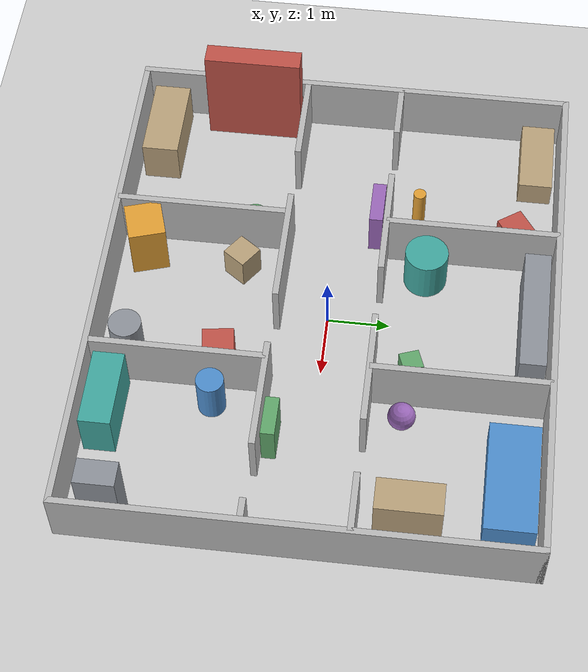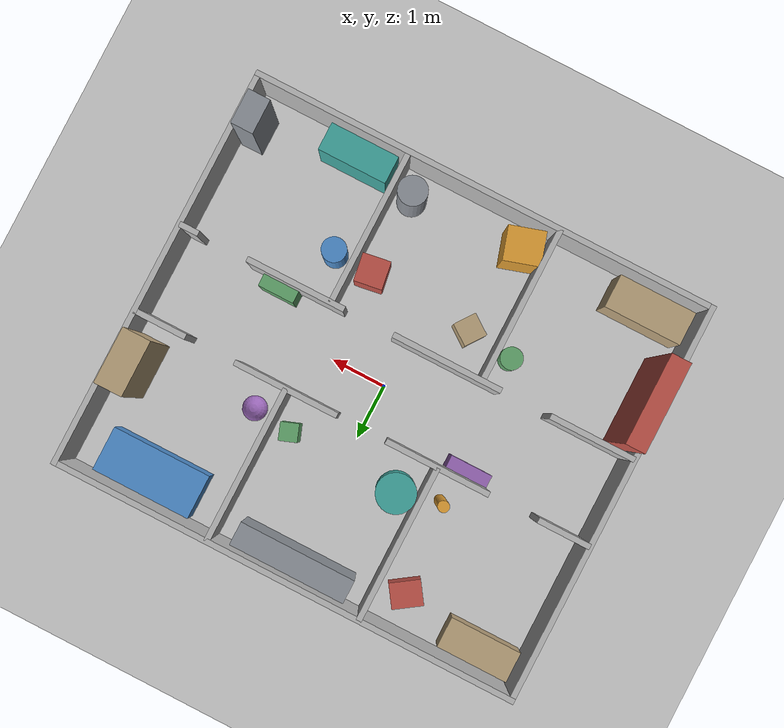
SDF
<?xml version="1.0"?>
<sdf version="1.6">
    <world name="default">

        <!-- 基础物理和场景插件 -->
        <plugin filename="gz-sim-physics-system"
            name="gz::sim::systems::Physics" />
        <plugin filename="gz-sim-user-commands-system"
            name="gz::sim::systems::UserCommands" />
        <plugin filename="gz-sim-scene-broadcaster-system"
            name="gz::sim::systems::SceneBroadcaster" />

        <!-- 传感器插件（激光雷达、摄像头等需要这个）-->
        <plugin filename="gz-sim-sensors-system"
            name="gz::sim::systems::Sensors">
            <render_engine>ogre2</render_engine>
        </plugin>

        <!-- IMU插件 -->
        <plugin filename="gz-sim-imu-system" name="gz::sim::systems::Imu" />

        <!-- 光源 -->
        <light type="directional" name="sun">
            <cast_shadows>true</cast_shadows>
            <pose>0 0 10 0 0 0</pose>
            <diffuse>0.8 0.8 0.8 1</diffuse>
            <specular>0.2 0.2 0.2 1</specular>
            <attenuation>
                <range>1000</range>
                <constant>0.9</constant>
                <linear>0.01</linear>
                <quadratic>0.001</quadratic>
            </attenuation>
            <direction>-0.5 0.1 -0.9</direction>
        </light>

        <!-- 地面 -->
        <model name="ground_plane">
            <static>true</static>
            <link name="link">
                <collision name="collision">
                    <geometry>
                        <plane>
                            <normal>0 0 1</normal>
                        </plane>
                    </geometry>
                </collision>
                <visual name="visual">
                    <geometry>
                        <plane>
                            <normal>0 0 1</normal>
                            <size>100 100</size>
                        </plane>
                    </geometry>
                    <material>
                        <ambient>0.8 0.8 0.8 1</ambient>
                        <diffuse>0.8 0.8 0.8 1</diffuse>
                    </material>
                </visual>
            </link>
        </model>

        <!-- ==================== 外墙（8.4 × 7.2 m 外框） ==================== -->

        <model name="wall_north">
            <static>true</static>
            <pose>0 3.6 0.5 0 0 0</pose>
            <link name="link">
                <collision name="collision">
                    <geometry><box><size>8.5 0.1 1</size></box></geometry>
                </collision>
                <visual name="visual">
                    <geometry><box><size>8.5 0.1 1</size></box></geometry>
                </visual>
            </link>
        </model>

        <model name="wall_south">
            <static>true</static>
            <pose>0 -3.6 0.5 0 0 0</pose>
            <link name="link">
                <collision name="collision">
                    <geometry><box><size>8.5 0.1 1</size></box></geometry>
                </collision>
                <visual name="visual">
                    <geometry><box><size>8.5 0.1 1</size></box></geometry>
                </visual>
            </link>
        </model>

        <model name="wall_west">
            <static>true</static>
            <pose>-4.2 0 0.5 0 0 0</pose>
            <link name="link">
                <collision name="collision">
                    <geometry><box><size>0.1 7.3 1</size></box></geometry>
                </collision>
                <visual name="visual">
                    <geometry><box><size>0.1 7.3 1</size></box></geometry>
                </visual>
            </link>
        </model>

        <model name="wall_east">
            <static>true</static>
            <pose>4.2 0 0.5 0 0 0</pose>
            <link name="link">
                <collision name="collision">
                    <geometry><box><size>0.1 7.3 1</size></box></geometry>
                </collision>
                <visual name="visual">
                    <geometry><box><size>0.1 7.3 1</size></box></geometry>
                </visual>
            </link>
        </model>

        <!-- ============ 走廊北墙 y=0.8，门洞在 x = -2.8 / 0.0 / 2.8 ============ -->
        <!-- 墙段: [-4.2,-3.25] [-2.35,-0.45] [0.45,2.35] [3.25,4.2] -->

        <model name="corridor_n_seg1">
            <static>true</static>
            <pose>-3.725 0.8 0.5 0 0 0</pose>
            <link name="link">
                <collision name="collision">
                    <geometry><box><size>0.95 0.1 1</size></box></geometry>
                </collision>
                <visual name="visual">
                    <geometry><box><size>0.95 0.1 1</size></box></geometry>
                </visual>
            </link>
        </model>

        <model name="corridor_n_seg2">
            <static>true</static>
            <pose>-1.4 0.8 0.5 0 0 0</pose>
            <link name="link">
                <collision name="collision">
                    <geometry><box><size>1.9 0.1 1</size></box></geometry>
                </collision>
                <visual name="visual">
                    <geometry><box><size>1.9 0.1 1</size></box></geometry>
                </visual>
            </link>
        </model>

        <model name="corridor_n_seg3">
            <static>true</static>
            <pose>1.4 0.8 0.5 0 0 0</pose>
            <link name="link">
                <collision name="collision">
                    <geometry><box><size>1.9 0.1 1</size></box></geometry>
                </collision>
                <visual name="visual">
                    <geometry><box><size>1.9 0.1 1</size></box></geometry>
                </visual>
            </link>
        </model>

        <model name="corridor_n_seg4">
            <static>true</static>
            <pose>3.725 0.8 0.5 0 0 0</pose>
            <link name="link">
                <collision name="collision">
                    <geometry><box><size>0.95 0.1 1</size></box></geometry>
                </collision>
                <visual name="visual">
                    <geometry><box><size>0.95 0.1 1</size></box></geometry>
                </visual>
            </link>
        </model>

        <!-- ===== 走廊南墙 y=-0.8，门洞在 x = -2.2 / 0.7 / 3.4（刻意与北侧错开）===== -->
        <!-- 墙段: [-4.2,-2.65] [-1.75,0.25] [1.15,2.95] [3.85,4.2] -->

        <model name="corridor_s_seg1">
            <static>true</static>
            <pose>-3.425 -0.8 0.5 0 0 0</pose>
            <link name="link">
                <collision name="collision">
                    <geometry><box><size>1.55 0.1 1</size></box></geometry>
                </collision>
                <visual name="visual">
                    <geometry><box><size>1.55 0.1 1</size></box></geometry>
                </visual>
            </link>
        </model>

        <model name="corridor_s_seg2">
            <static>true</static>
            <pose>-0.75 -0.8 0.5 0 0 0</pose>
            <link name="link">
                <collision name="collision">
                    <geometry><box><size>2.0 0.1 1</size></box></geometry>
                </collision>
                <visual name="visual">
                    <geometry><box><size>2.0 0.1 1</size></box></geometry>
                </visual>
            </link>
        </model>

        <model name="corridor_s_seg3">
            <static>true</static>
            <pose>2.05 -0.8 0.5 0 0 0</pose>
            <link name="link">
                <collision name="collision">
                    <geometry><box><size>1.8 0.1 1</size></box></geometry>
                </collision>
                <visual name="visual">
                    <geometry><box><size>1.8 0.1 1</size></box></geometry>
                </visual>
            </link>
        </model>

        <model name="corridor_s_seg4">
            <static>true</static>
            <pose>4.025 -0.8 0.5 0 0 0</pose>
            <link name="link">
                <collision name="collision">
                    <geometry><box><size>0.35 0.1 1</size></box></geometry>
                </collision>
                <visual name="visual">
                    <geometry><box><size>0.35 0.1 1</size></box></geometry>
                </visual>
            </link>
        </model>

        <!-- ==================== 房间隔墙 ==================== -->

        <model name="divider_n_west">
            <static>true</static>
            <pose>-1.4 2.2 0.5 0 0 0</pose>
            <link name="link">
                <collision name="collision">
                    <geometry><box><size>0.1 2.8 1</size></box></geometry>
                </collision>
                <visual name="visual">
                    <geometry><box><size>0.1 2.8 1</size></box></geometry>
                </visual>
            </link>
        </model>

        <model name="divider_n_east">
            <static>true</static>
            <pose>1.4 2.2 0.5 0 0 0</pose>
            <link name="link">
                <collision name="collision">
                    <geometry><box><size>0.1 2.8 1</size></box></geometry>
                </collision>
                <visual name="visual">
                    <geometry><box><size>0.1 2.8 1</size></box></geometry>
                </visual>
            </link>
        </model>

        <model name="divider_s_west">
            <static>true</static>
            <pose>-1.4 -2.2 0.5 0 0 0</pose>
            <link name="link">
                <collision name="collision">
                    <geometry><box><size>0.1 2.8 1</size></box></geometry>
                </collision>
                <visual name="visual">
                    <geometry><box><size>0.1 2.8 1</size></box></geometry>
                </visual>
            </link>
        </model>

        <model name="divider_s_east">
            <static>true</static>
            <pose>1.4 -2.2 0.5 0 0 0</pose>
            <link name="link">
                <collision name="collision">
                    <geometry><box><size>0.1 2.8 1</size></box></geometry>
                </collision>
                <visual name="visual">
                    <geometry><box><size>0.1 2.8 1</size></box></geometry>
                </visual>
            </link>
        </model>

        <!-- 客厅·长沙发（贴北墙，矮而长） -->
        <model name="n1_sofa">
            <static>true</static>
            <pose>-3.45 3.2 0.225 0 0 0.0</pose>
            <link name="link">
                <collision name="collision">
                    <geometry><box><size>1.3 0.55 0.45</size></box></geometry>
                </collision>
                <visual name="visual">
                    <geometry><box><size>1.3 0.55 0.45</size></box></geometry>
                    <material>
                        <ambient>0.72 0.63 0.48 1</ambient>
                        <diffuse>0.72 0.63 0.48 1</diffuse>
                    </material>
                </visual>
            </link>
        </model>

        <!-- 客厅·茶几（斜放，矮） -->
        <model name="n1_table">
            <static>true</static>
            <pose>-1.95 2.95 0.19 0 0 0.6</pose>
            <link name="link">
                <collision name="collision">
                    <geometry><box><size>0.55 0.45 0.38</size></box></geometry>
                </collision>
                <visual name="visual">
                    <geometry><box><size>0.55 0.45 0.38</size></box></geometry>
                    <material>
                        <ambient>0.75 0.32 0.28 1</ambient>
                        <diffuse>0.75 0.32 0.28 1</diffuse>
                    </material>
                </visual>
            </link>
        </model>

        <!-- 客厅·落地灯（细高） -->
        <model name="n1_lamp">
            <static>true</static>
            <pose>-1.75 1.3 0.65 0 0 0</pose>
            <link name="link">
                <collision name="collision">
                    <geometry><cylinder><radius>0.1</radius><length>1.3</length></cylinder></geometry>
                </collision>
                <visual name="visual">
                    <geometry><cylinder><radius>0.1</radius><length>1.3</length></cylinder></geometry>
                    <material>
                        <ambient>0.88 0.62 0.20 1</ambient>
                        <diffuse>0.88 0.62 0.20 1</diffuse>
                    </material>
                </visual>
            </link>
        </model>

        <!-- 厨房·整排橱柜（贴北墙，长直边） -->
        <model name="n2_counter">
            <static>true</static>
            <pose>0.0 3.28 0.45 0 0 0.0</pose>
            <link name="link">
                <collision name="collision">
                    <geometry><box><size>2.1 0.42 0.9</size></box></geometry>
                </collision>
                <visual name="visual">
                    <geometry><box><size>2.1 0.42 0.9</size></box></geometry>
                    <material>
                        <ambient>0.55 0.57 0.60 1</ambient>
                        <diffuse>0.55 0.57 0.60 1</diffuse>
                    </material>
                </visual>
            </link>
        </model>

        <!-- 厨房·圆餐桌 -->
        <model name="n2_table">
            <static>true</static>
            <pose>-1.0 1.5 0.37 0 0 0</pose>
            <link name="link">
                <collision name="collision">
                    <geometry><cylinder><radius>0.35</radius><length>0.74</length></cylinder></geometry>
                </collision>
                <visual name="visual">
                    <geometry><cylinder><radius>0.35</radius><length>0.74</length></cylinder></geometry>
                    <material>
                        <ambient>0.25 0.65 0.62 1</ambient>
                        <diffuse>0.25 0.65 0.62 1</diffuse>
                    </material>
                </visual>
            </link>
        </model>

        <!-- 厨房·立式垃圾桶（小方） -->
        <model name="n2_bin">
            <static>true</static>
            <pose>1.05 1.42 0.35 0 0 0.35</pose>
            <link name="link">
                <collision name="collision">
                    <geometry><box><size>0.32 0.32 0.7</size></box></geometry>
                </collision>
                <visual name="visual">
                    <geometry><box><size>0.32 0.32 0.7</size></box></geometry>
                    <material>
                        <ambient>0.38 0.65 0.42 1</ambient>
                        <diffuse>0.38 0.65 0.42 1</diffuse>
                    </material>
                </visual>
            </link>
        </model>

        <!-- 卧室·床（贴北墙，占半间） -->
        <model name="n3_bed">
            <static>true</static>
            <pose>2.8 3.1 0.25 0 0 0.0</pose>
            <link name="link">
                <collision name="collision">
                    <geometry><box><size>1.8 0.8 0.5</size></box></geometry>
                </collision>
                <visual name="visual">
                    <geometry><box><size>1.8 0.8 0.5</size></box></geometry>
                    <material>
                        <ambient>0.30 0.55 0.80 1</ambient>
                        <diffuse>0.30 0.55 0.80 1</diffuse>
                    </material>
                </visual>
            </link>
        </model>

        <!-- 卧室·衣柜（贴东墙，高） -->
        <model name="n3_wardrobe">
            <static>true</static>
            <pose>3.85 1.6 0.775 0 0 0.0</pose>
            <link name="link">
                <collision name="collision">
                    <geometry><box><size>0.5 1.0 1.55</size></box></geometry>
                </collision>
                <visual name="visual">
                    <geometry><box><size>0.5 1.0 1.55</size></box></geometry>
                    <material>
                        <ambient>0.72 0.63 0.48 1</ambient>
                        <diffuse>0.72 0.63 0.48 1</diffuse>
                    </material>
                </visual>
            </link>
        </model>

        <!-- 卧室·脏衣篓（球） -->
        <model name="n3_basket">
            <static>true</static>
            <pose>1.78 1.35 0.22 0 0 0</pose>
            <link name="link">
                <collision name="collision">
                    <geometry><sphere><radius>0.22</radius></sphere></geometry>
                </collision>
                <visual name="visual">
                    <geometry><sphere><radius>0.22</radius></sphere></geometry>
                    <material>
                        <ambient>0.60 0.40 0.72 1</ambient>
                        <diffuse>0.60 0.40 0.72 1</diffuse>
                    </material>
                </visual>
            </link>
        </model>

        <!-- 书房·书桌（贴南墙） -->
        <model name="s1_desk">
            <static>true</static>
            <pose>-3.35 -3.15 0.375 0 0 0.0</pose>
            <link name="link">
                <collision name="collision">
                    <geometry><box><size>1.4 0.6 0.75</size></box></geometry>
                </collision>
                <visual name="visual">
                    <geometry><box><size>1.4 0.6 0.75</size></box></geometry>
                    <material>
                        <ambient>0.72 0.63 0.48 1</ambient>
                        <diffuse>0.72 0.63 0.48 1</diffuse>
                    </material>
                </visual>
            </link>
        </model>

        <!-- 书房·书架（贴西墙，顶天） -->
        <model name="s1_shelf">
            <static>true</static>
            <pose>-3.95 -1.7 0.9 0 0 0.0</pose>
            <link name="link">
                <collision name="collision">
                    <geometry><box><size>0.35 1.6 1.8</size></box></geometry>
                </collision>
                <visual name="visual">
                    <geometry><box><size>0.35 1.6 1.8</size></box></geometry>
                    <material>
                        <ambient>0.75 0.32 0.28 1</ambient>
                        <diffuse>0.75 0.32 0.28 1</diffuse>
                    </material>
                </visual>
            </link>
        </model>

        <!-- 书房·圆凳（矮胖） -->
        <model name="s1_stool">
            <static>true</static>
            <pose>-1.7 -1.4 0.225 0 0 0</pose>
            <link name="link">
                <collision name="collision">
                    <geometry><cylinder><radius>0.2</radius><length>0.45</length></cylinder></geometry>
                </collision>
                <visual name="visual">
                    <geometry><cylinder><radius>0.2</radius><length>0.45</length></cylinder></geometry>
                    <material>
                        <ambient>0.38 0.65 0.42 1</ambient>
                        <diffuse>0.38 0.65 0.42 1</diffuse>
                    </material>
                </visual>
            </link>
        </model>

        <!-- 储物·大纸箱（乱堆，斜） -->
        <model name="s2_crate_a">
            <static>true</static>
            <pose>-1.0 -3.1 0.475 0 0 0.3</pose>
            <link name="link">
                <collision name="collision">
                    <geometry><box><size>0.65 0.6 0.95</size></box></geometry>
                </collision>
                <visual name="visual">
                    <geometry><box><size>0.65 0.6 0.95</size></box></geometry>
                    <material>
                        <ambient>0.88 0.62 0.20 1</ambient>
                        <diffuse>0.88 0.62 0.20 1</diffuse>
                    </material>
                </visual>
            </link>
        </model>

        <!-- 储物·小纸箱（斜） -->
        <model name="s2_crate_b">
            <static>true</static>
            <pose>-0.85 -1.5 0.275 0 0 0.95</pose>
            <link name="link">
                <collision name="collision">
                    <geometry><box><size>0.42 0.42 0.55</size></box></geometry>
                </collision>
                <visual name="visual">
                    <geometry><box><size>0.42 0.42 0.55</size></box></geometry>
                    <material>
                        <ambient>0.72 0.63 0.48 1</ambient>
                        <diffuse>0.72 0.63 0.48 1</diffuse>
                    </material>
                </visual>
            </link>
        </model>

        <!-- 储物·铁桶 -->
        <model name="s2_drum">
            <static>true</static>
            <pose>1.05 -3.05 0.5 0 0 0</pose>
            <link name="link">
                <collision name="collision">
                    <geometry><cylinder><radius>0.26</radius><length>1.0</length></cylinder></geometry>
                </collision>
                <visual name="visual">
                    <geometry><cylinder><radius>0.26</radius><length>1.0</length></cylinder></geometry>
                    <material>
                        <ambient>0.55 0.57 0.60 1</ambient>
                        <diffuse>0.55 0.57 0.60 1</diffuse>
                    </material>
                </visual>
            </link>
        </model>

        <!-- 储物·中纸箱（贴东墙） -->
        <model name="s2_crate_c">
            <static>true</static>
            <pose>1.05 -1.6 0.35 0 0 0.15</pose>
            <link name="link">
                <collision name="collision">
                    <geometry><box><size>0.5 0.5 0.7</size></box></geometry>
                </collision>
                <visual name="visual">
                    <geometry><box><size>0.5 0.5 0.7</size></box></geometry>
                    <material>
                        <ambient>0.75 0.32 0.28 1</ambient>
                        <diffuse>0.75 0.32 0.28 1</diffuse>
                    </material>
                </visual>
            </link>
        </model>

        <!-- 卫生间·洗手台（贴南墙，长条） -->
        <model name="s3_vanity">
            <static>true</static>
            <pose>2.15 -3.22 0.425 0 0 0.0</pose>
            <link name="link">
                <collision name="collision">
                    <geometry><box><size>1.25 0.5 0.85</size></box></geometry>
                </collision>
                <visual name="visual">
                    <geometry><box><size>1.25 0.5 0.85</size></box></geometry>
                    <material>
                        <ambient>0.25 0.65 0.62 1</ambient>
                        <diffuse>0.25 0.65 0.62 1</diffuse>
                    </material>
                </visual>
            </link>
        </model>

        <!-- 卫生间·高柜（贴东墙） -->
        <model name="s3_cabinet">
            <static>true</static>
            <pose>3.92 -2.9 0.725 0 0 0.0</pose>
            <link name="link">
                <collision name="collision">
                    <geometry><box><size>0.4 0.62 1.45</size></box></geometry>
                </collision>
                <visual name="visual">
                    <geometry><box><size>0.4 0.62 1.45</size></box></geometry>
                    <material>
                        <ambient>0.55 0.57 0.60 1</ambient>
                        <diffuse>0.55 0.57 0.60 1</diffuse>
                    </material>
                </visual>
            </link>
        </model>

        <!-- 卫生间·矮圆（马桶近似） -->
        <model name="s3_stool">
            <static>true</static>
            <pose>1.78 -1.62 0.375 0 0 0</pose>
            <link name="link">
                <collision name="collision">
                    <geometry><cylinder><radius>0.22</radius><length>0.75</length></cylinder></geometry>
                </collision>
                <visual name="visual">
                    <geometry><cylinder><radius>0.22</radius><length>0.75</length></cylinder></geometry>
                    <material>
                        <ambient>0.30 0.55 0.80 1</ambient>
                        <diffuse>0.30 0.55 0.80 1</diffuse>
                    </material>
                </visual>
            </link>
        </model>

        <!-- 走廊·靠北墙矮柜（纵向锚点，与南侧错开） -->
        <model name="hall_console_w">
            <static>true</static>
            <pose>-1.9 0.62 0.4 0 0 0.0</pose>
            <link name="link">
                <collision name="collision">
                    <geometry><box><size>0.75 0.22 0.8</size></box></geometry>
                </collision>
                <visual name="visual">
                    <geometry><box><size>0.75 0.22 0.8</size></box></geometry>
                    <material>
                        <ambient>0.60 0.40 0.72 1</ambient>
                        <diffuse>0.60 0.40 0.72 1</diffuse>
                    </material>
                </visual>
            </link>
        </model>

        <!-- 走廊·靠南墙矮柜（纵向锚点） -->
        <model name="hall_console_e">
            <static>true</static>
            <pose>2.3 -0.62 0.375 0 0 0.0</pose>
            <link name="link">
                <collision name="collision">
                    <geometry><box><size>0.65 0.22 0.75</size></box></geometry>
                </collision>
                <visual name="visual">
                    <geometry><box><size>0.65 0.22 0.75</size></box></geometry>
                    <material>
                        <ambient>0.38 0.65 0.42 1</ambient>
                        <diffuse>0.38 0.65 0.42 1</diffuse>
                    </material>
                </visual>
            </link>
        </model>

    </world>
</sdf>
